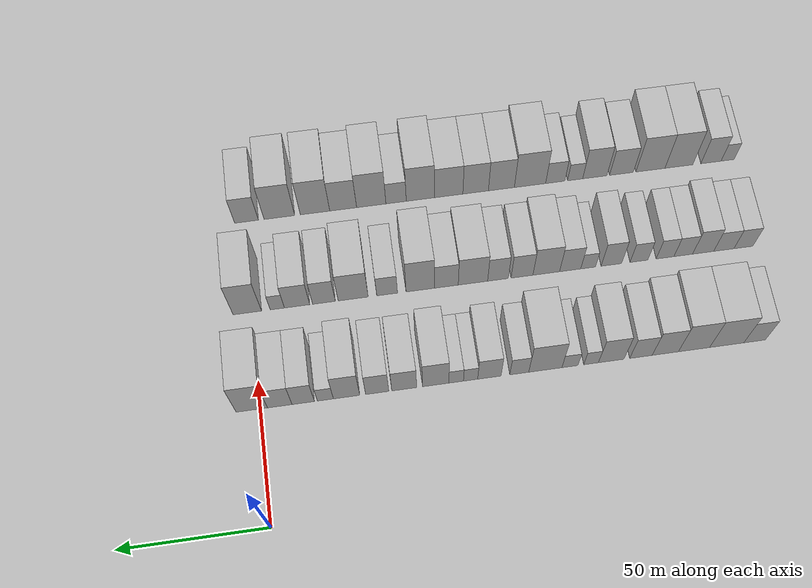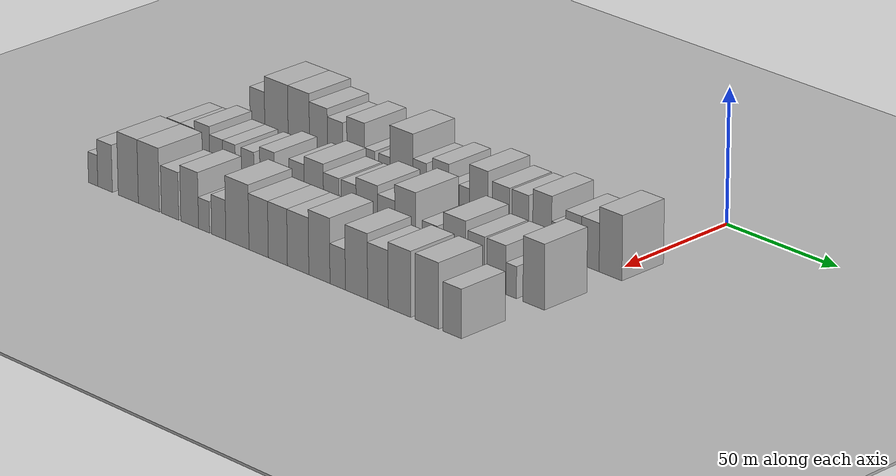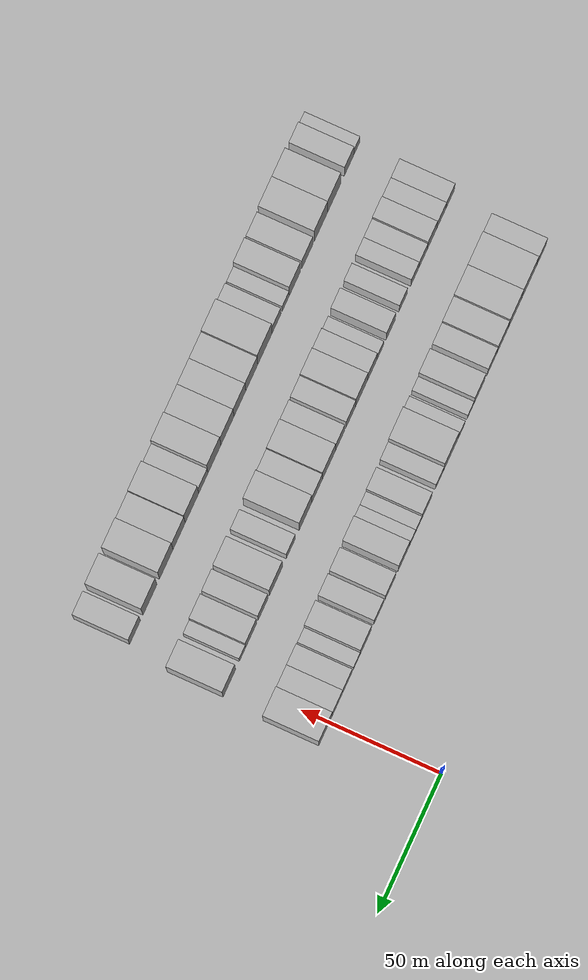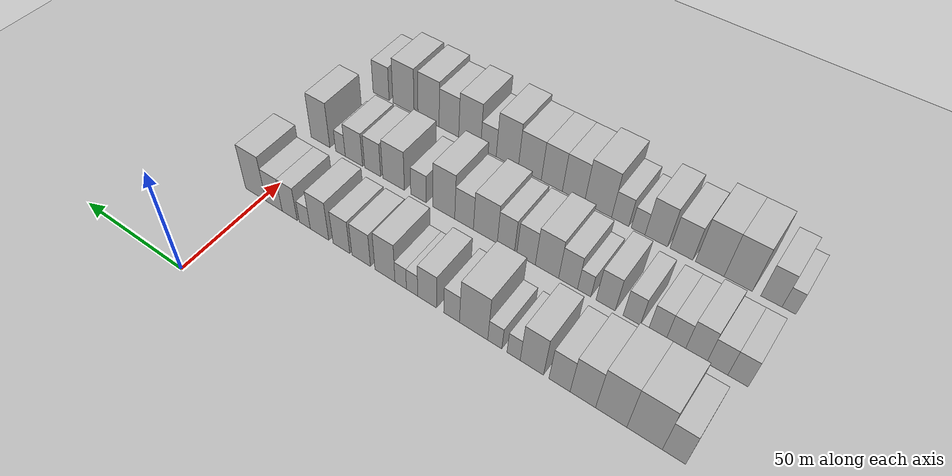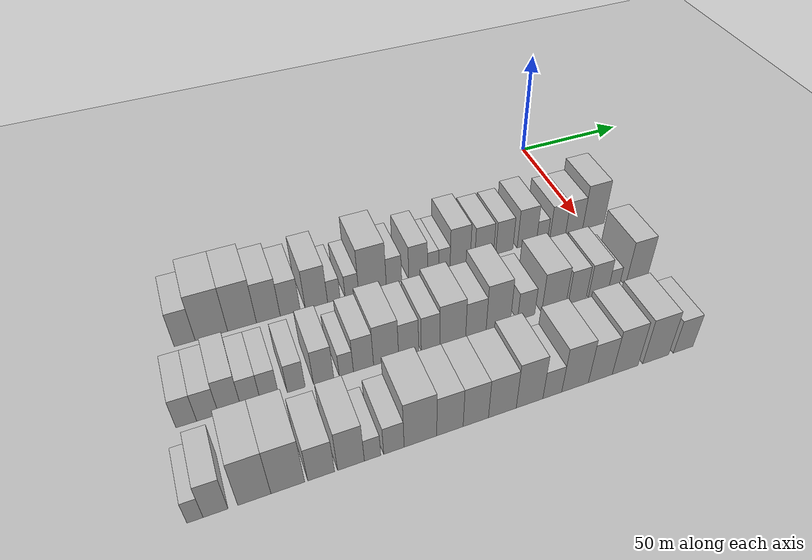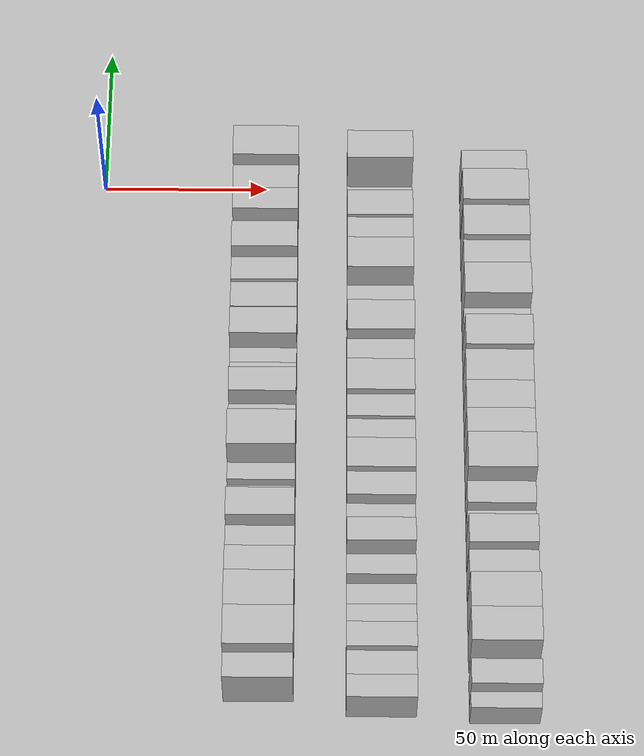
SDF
<sdf version="1.6">
 <world name="default">
  <include><name>ground_plane_1</name><uri>model://HANNAS_ground_plane</uri></include>
  <include>
   <name>ground_plane_2</name>
   <uri>model://HANNAS_ground_plane</uri>
   <pose>100 0 0  0 0 0</pose>
  </include>
  <model name="building_21">
   <static>1</static>
   <pose>50.0000 -168.9230 0 0.000000 0.000000 0.000000</pose>
   <link name="link">
    <pose>0 0 9.00 0 0 0</pose>
    <collision name="collision"><geometry><box><size>20.0000 7.5933 18.0000</size></box></geometry></collision>
    <visual name="visual">
     <cast_shadows>0</cast_shadows>
     <geometry><box><size>20.0000 7.5933 18.0000</size></box></geometry>
     <material>
      <script>
       <uri>model://HANNAS_wall/materials/scripts</uri>
       <uri>model://HANNAS_wall/materials/textures</uri>
       <name>vrc/HANNAS_wall</name>
      </script>
     </material>
    </visual>
   </link>
  </model>
  <model name="building_22">
   <static>1</static>
   <pose>50.0000 -159.1426 0 0.000000 0.000000 0.000000</pose>
   <link name="link">
    <pose>0 0 12.00 0 0 0</pose>
    <collision name="collision"><geometry><box><size>20.0000 11.9675 24.0000</size></box></geometry></collision>
    <visual name="visual">
     <cast_shadows>0</cast_shadows>
     <geometry><box><size>20.0000 11.9675 24.0000</size></box></geometry>
     <material>
      <script>
       <uri>model://HANNAS_wall/materials/scripts</uri>
       <uri>model://HANNAS_wall/materials/textures</uri>
       <name>vrc/HANNAS_wall</name>
      </script>
     </material>
    </visual>
   </link>
  </model>
  <model name="building_23">
   <static>1</static>
   <pose>50.0000 -147.7311 0 0.000000 0.000000 0.000000</pose>
   <link name="link">
    <pose>0 0 12.00 0 0 0</pose>
    <collision name="collision"><geometry><box><size>20.0000 10.8554 24.0000</size></box></geometry></collision>
    <visual name="visual">
     <cast_shadows>0</cast_shadows>
     <geometry><box><size>20.0000 10.8554 24.0000</size></box></geometry>
     <material>
      <script>
       <uri>model://HANNAS_wall/materials/scripts</uri>
       <uri>model://HANNAS_wall/materials/textures</uri>
       <name>vrc/HANNAS_wall</name>
      </script>
     </material>
    </visual>
   </link>
  </model>
  <model name="building_24">
   <static>1</static>
   <pose>50.0000 -137.7497 0 0.000000 0.000000 0.000000</pose>
   <link name="link">
    <pose>0 0 10.50 0 0 0</pose>
    <collision name="collision"><geometry><box><size>20.0000 9.1074 21.0000</size></box></geometry></collision>
    <visual name="visual">
     <cast_shadows>0</cast_shadows>
     <geometry><box><size>20.0000 9.1074 21.0000</size></box></geometry>
     <material>
      <script>
       <uri>model://HANNAS_wall/materials/scripts</uri>
       <uri>model://HANNAS_wall/materials/textures</uri>
       <name>vrc/HANNAS_wall</name>
      </script>
     </material>
    </visual>
   </link>
  </model>
  <model name="building_25">
   <static>1</static>
   <pose>50.0000 -129.3136 0 0.000000 0.000000 0.000000</pose>
   <link name="link">
    <pose>0 0 9.00 0 0 0</pose>
    <collision name="collision"><geometry><box><size>20.0000 7.7648 18.0000</size></box></geometry></collision>
    <visual name="visual">
     <cast_shadows>0</cast_shadows>
     <geometry><box><size>20.0000 7.7648 18.0000</size></box></geometry>
     <material>
      <script>
       <uri>model://HANNAS_wall/materials/scripts</uri>
       <uri>model://HANNAS_wall/materials/textures</uri>
       <name>vrc/HANNAS_wall</name>
      </script>
     </material>
    </visual>
   </link>
  </model>
  <model name="building_26">
   <static>1</static>
   <pose>50.0000 -119.0147 0 0.000000 0.000000 0.000000</pose>
   <link name="link">
    <pose>0 0 10.50 0 0 0</pose>
    <collision name="collision"><geometry><box><size>20.0000 8.8330 21.0000</size></box></geometry></collision>
    <visual name="visual">
     <cast_shadows>0</cast_shadows>
     <geometry><box><size>20.0000 8.8330 21.0000</size></box></geometry>
     <material>
      <script>
       <uri>model://HANNAS_wall/materials/scripts</uri>
       <uri>model://HANNAS_wall/materials/textures</uri>
       <name>vrc/HANNAS_wall</name>
      </script>
     </material>
    </visual>
   </link>
  </model>
  <model name="building_27">
   <static>1</static>
   <pose>50.0000 -112.0766 0 0.000000 0.000000 0.000000</pose>
   <link name="link">
    <pose>0 0 6.00 0 0 0</pose>
    <collision name="collision"><geometry><box><size>20.0000 5.0432 12.0000</size></box></geometry></collision>
    <visual name="visual">
     <cast_shadows>0</cast_shadows>
     <geometry><box><size>20.0000 5.0432 12.0000</size></box></geometry>
     <material>
      <script>
       <uri>model://HANNAS_wall/materials/scripts</uri>
       <uri>model://HANNAS_wall/materials/textures</uri>
       <name>vrc/HANNAS_wall</name>
      </script>
     </material>
    </visual>
   </link>
  </model>
  <model name="building_28">
   <static>1</static>
   <pose>50.0000 -104.7980 0 0.000000 0.000000 0.000000</pose>
   <link name="link">
    <pose>0 0 6.00 0 0 0</pose>
    <collision name="collision"><geometry><box><size>20.0000 5.5138 12.0000</size></box></geometry></collision>
    <visual name="visual">
     <cast_shadows>0</cast_shadows>
     <geometry><box><size>20.0000 5.5138 12.0000</size></box></geometry>
     <material>
      <script>
       <uri>model://HANNAS_wall/materials/scripts</uri>
       <uri>model://HANNAS_wall/materials/textures</uri>
       <name>vrc/HANNAS_wall</name>
      </script>
     </material>
    </visual>
   </link>
  </model>
  <model name="building_29">
   <static>1</static>
   <pose>50.0000 -96.3448 0 0.000000 0.000000 0.000000</pose>
   <link name="link">
    <pose>0 0 12.00 0 0 0</pose>
    <collision name="collision"><geometry><box><size>20.0000 11.3927 24.0000</size></box></geometry></collision>
    <visual name="visual">
     <cast_shadows>0</cast_shadows>
     <geometry><box><size>20.0000 11.3927 24.0000</size></box></geometry>
     <material>
      <script>
       <uri>model://HANNAS_wall/materials/scripts</uri>
       <uri>model://HANNAS_wall/materials/textures</uri>
       <name>vrc/HANNAS_wall</name>
      </script>
     </material>
    </visual>
   </link>
  </model>
  <model name="building_30">
   <static>1</static>
   <pose>50.0000 -87.4244 0 0.000000 0.000000 0.000000</pose>
   <link name="link">
    <pose>0 0 7.50 0 0 0</pose>
    <collision name="collision"><geometry><box><size>20.0000 6.4481 15.0000</size></box></geometry></collision>
    <visual name="visual">
     <cast_shadows>0</cast_shadows>
     <geometry><box><size>20.0000 6.4481 15.0000</size></box></geometry>
     <material>
      <script>
       <uri>model://HANNAS_wall/materials/scripts</uri>
       <uri>model://HANNAS_wall/materials/textures</uri>
       <name>vrc/HANNAS_wall</name>
      </script>
     </material>
    </visual>
   </link>
  </model>
  <model name="building_31">
   <static>1</static>
   <pose>50.0000 -77.2165 0 0.000000 0.000000 0.000000</pose>
   <link name="link">
    <pose>0 0 9.00 0 0 0</pose>
    <collision name="collision"><geometry><box><size>20.0000 7.9678 18.0000</size></box></geometry></collision>
    <visual name="visual">
     <cast_shadows>0</cast_shadows>
     <geometry><box><size>20.0000 7.9678 18.0000</size></box></geometry>
     <material>
      <script>
       <uri>model://HANNAS_wall/materials/scripts</uri>
       <uri>model://HANNAS_wall/materials/textures</uri>
       <name>vrc/HANNAS_wall</name>
      </script>
     </material>
    </visual>
   </link>
  </model>
  <model name="building_32">
   <static>1</static>
   <pose>50.0000 -70.8102 0 0.000000 0.000000 0.000000</pose>
   <link name="link">
    <pose>0 0 6.00 0 0 0</pose>
    <collision name="collision"><geometry><box><size>20.0000 4.8449 12.0000</size></box></geometry></collision>
    <visual name="visual">
     <cast_shadows>0</cast_shadows>
     <geometry><box><size>20.0000 4.8449 12.0000</size></box></geometry>
     <material>
      <script>
       <uri>model://HANNAS_wall/materials/scripts</uri>
       <uri>model://HANNAS_wall/materials/textures</uri>
       <name>vrc/HANNAS_wall</name>
      </script>
     </material>
    </visual>
   </link>
  </model>
  <model name="building_33">
   <static>1</static>
   <pose>50.0000 -65.8977 0 0.000000 0.000000 0.000000</pose>
   <link name="link">
    <pose>0 0 6.00 0 0 0</pose>
    <collision name="collision"><geometry><box><size>20.0000 4.9800 12.0000</size></box></geometry></collision>
    <visual name="visual">
     <cast_shadows>0</cast_shadows>
     <geometry><box><size>20.0000 4.9800 12.0000</size></box></geometry>
     <material>
      <script>
       <uri>model://HANNAS_wall/materials/scripts</uri>
       <uri>model://HANNAS_wall/materials/textures</uri>
       <name>vrc/HANNAS_wall</name>
      </script>
     </material>
    </visual>
   </link>
  </model>
  <model name="building_34">
   <static>1</static>
   <pose>50.0000 -58.9646 0 0.000000 0.000000 0.000000</pose>
   <link name="link">
    <pose>0 0 10.50 0 0 0</pose>
    <collision name="collision"><geometry><box><size>20.0000 8.8863 21.0000</size></box></geometry></collision>
    <visual name="visual">
     <cast_shadows>0</cast_shadows>
     <geometry><box><size>20.0000 8.8863 21.0000</size></box></geometry>
     <material>
      <script>
       <uri>model://HANNAS_wall/materials/scripts</uri>
       <uri>model://HANNAS_wall/materials/textures</uri>
       <name>vrc/HANNAS_wall</name>
      </script>
     </material>
    </visual>
   </link>
  </model>
  <model name="building_35">
   <static>1</static>
   <pose>50.0000 -48.3044 0 0.000000 0.000000 0.000000</pose>
   <link name="link">
    <pose>0 0 9.00 0 0 0</pose>
    <collision name="collision"><geometry><box><size>20.0000 8.4340 18.0000</size></box></geometry></collision>
    <visual name="visual">
     <cast_shadows>0</cast_shadows>
     <geometry><box><size>20.0000 8.4340 18.0000</size></box></geometry>
     <material>
      <script>
       <uri>model://HANNAS_wall/materials/scripts</uri>
       <uri>model://HANNAS_wall/materials/textures</uri>
       <name>vrc/HANNAS_wall</name>
      </script>
     </material>
    </visual>
   </link>
  </model>
  <model name="building_36">
   <static>1</static>
   <pose>50.0000 -39.1806 0 0.000000 0.000000 0.000000</pose>
   <link name="link">
    <pose>0 0 9.00 0 0 0</pose>
    <collision name="collision"><geometry><box><size>20.0000 7.8136 18.0000</size></box></geometry></collision>
    <visual name="visual">
     <cast_shadows>0</cast_shadows>
     <geometry><box><size>20.0000 7.8136 18.0000</size></box></geometry>
     <material>
      <script>
       <uri>model://HANNAS_wall/materials/scripts</uri>
       <uri>model://HANNAS_wall/materials/textures</uri>
       <name>vrc/HANNAS_wall</name>
      </script>
     </material>
    </visual>
   </link>
  </model>
  <model name="building_37">
   <static>1</static>
   <pose>50.0000 -28.8370 0 0.000000 0.000000 0.000000</pose>
   <link name="link">
    <pose>0 0 10.50 0 0 0</pose>
    <collision name="collision"><geometry><box><size>20.0000 8.8737 21.0000</size></box></geometry></collision>
    <visual name="visual">
     <cast_shadows>0</cast_shadows>
     <geometry><box><size>20.0000 8.8737 21.0000</size></box></geometry>
     <material>
      <script>
       <uri>model://HANNAS_wall/materials/scripts</uri>
       <uri>model://HANNAS_wall/materials/textures</uri>
       <name>vrc/HANNAS_wall</name>
      </script>
     </material>
    </visual>
   </link>
  </model>
  <model name="building_38">
   <static>1</static>
   <pose>50.0000 -21.7184 0 0.000000 0.000000 0.000000</pose>
   <link name="link">
    <pose>0 0 6.00 0 0 0</pose>
    <collision name="collision"><geometry><box><size>20.0000 5.3636 12.0000</size></box></geometry></collision>
    <visual name="visual">
     <cast_shadows>0</cast_shadows>
     <geometry><box><size>20.0000 5.3636 12.0000</size></box></geometry>
     <material>
      <script>
       <uri>model://HANNAS_wall/materials/scripts</uri>
       <uri>model://HANNAS_wall/materials/textures</uri>
       <name>vrc/HANNAS_wall</name>
      </script>
     </material>
    </visual>
   </link>
  </model>
  <model name="building_39">
   <static>1</static>
   <pose>50.0000 -14.2941 0 0.000000 0.000000 0.000000</pose>
   <link name="link">
    <pose>0 0 9.00 0 0 0</pose>
    <collision name="collision"><geometry><box><size>20.0000 7.4851 18.0000</size></box></geometry></collision>
    <visual name="visual">
     <cast_shadows>0</cast_shadows>
     <geometry><box><size>20.0000 7.4851 18.0000</size></box></geometry>
     <material>
      <script>
       <uri>model://HANNAS_wall/materials/scripts</uri>
       <uri>model://HANNAS_wall/materials/textures</uri>
       <name>vrc/HANNAS_wall</name>
      </script>
     </material>
    </visual>
   </link>
  </model>
  <model name="building_40">
   <static>1</static>
   <pose>50.0000 -6.4519 0 0.000000 0.000000 0.000000</pose>
   <link name="link">
    <pose>0 0 9.00 0 0 0</pose>
    <collision name="collision"><geometry><box><size>20.0000 8.1993 18.0000</size></box></geometry></collision>
    <visual name="visual">
     <cast_shadows>0</cast_shadows>
     <geometry><box><size>20.0000 8.1993 18.0000</size></box></geometry>
     <material>
      <script>
       <uri>model://HANNAS_wall/materials/scripts</uri>
       <uri>model://HANNAS_wall/materials/textures</uri>
       <name>vrc/HANNAS_wall</name>
      </script>
     </material>
    </visual>
   </link>
  </model>
  <model name="building_41">
   <static>1</static>
   <pose>50.0000 2.8900 0 0.000000 0.000000 0.000000</pose>
   <link name="link">
    <pose>0 0 12.00 0 0 0</pose>
    <collision name="collision"><geometry><box><size>20.0000 10.4844 24.0000</size></box></geometry></collision>
    <visual name="visual">
     <cast_shadows>0</cast_shadows>
     <geometry><box><size>20.0000 10.4844 24.0000</size></box></geometry>
     <material>
      <script>
       <uri>model://HANNAS_wall/materials/scripts</uri>
       <uri>model://HANNAS_wall/materials/textures</uri>
       <name>vrc/HANNAS_wall</name>
      </script>
     </material>
    </visual>
   </link>
  </model>
  <model name="building_107">
   <static>1</static>
   <pose>85.0000 -173.7411 0 0.000000 0.000000 0.000000</pose>
   <link name="link">
    <pose>0 0 7.50 0 0 0</pose>
    <collision name="collision"><geometry><box><size>20.0000 6.8710 15.0000</size></box></geometry></collision>
    <visual name="visual">
     <cast_shadows>0</cast_shadows>
     <geometry><box><size>20.0000 6.8710 15.0000</size></box></geometry>
     <material>
      <script>
       <uri>model://HANNAS_wall/materials/scripts</uri>
       <uri>model://HANNAS_wall/materials/textures</uri>
       <name>vrc/HANNAS_wall</name>
      </script>
     </material>
    </visual>
   </link>
  </model>
  <model name="building_108">
   <static>1</static>
   <pose>85.0000 -166.6475 0 0.000000 0.000000 0.000000</pose>
   <link name="link">
    <pose>0 0 7.50 0 0 0</pose>
    <collision name="collision"><geometry><box><size>20.0000 7.3164 15.0000</size></box></geometry></collision>
    <visual name="visual">
     <cast_shadows>0</cast_shadows>
     <geometry><box><size>20.0000 7.3164 15.0000</size></box></geometry>
     <material>
      <script>
       <uri>model://HANNAS_wall/materials/scripts</uri>
       <uri>model://HANNAS_wall/materials/textures</uri>
       <name>vrc/HANNAS_wall</name>
      </script>
     </material>
    </visual>
   </link>
  </model>
  <model name="building_109">
   <static>1</static>
   <pose>85.0000 -159.1864 0 0.000000 0.000000 0.000000</pose>
   <link name="link">
    <pose>0 0 9.00 0 0 0</pose>
    <collision name="collision"><geometry><box><size>20.0000 7.6057 18.0000</size></box></geometry></collision>
    <visual name="visual">
     <cast_shadows>0</cast_shadows>
     <geometry><box><size>20.0000 7.6057 18.0000</size></box></geometry>
     <material>
      <script>
       <uri>model://HANNAS_wall/materials/scripts</uri>
       <uri>model://HANNAS_wall/materials/textures</uri>
       <name>vrc/HANNAS_wall</name>
      </script>
     </material>
    </visual>
   </link>
  </model>
  <model name="building_110">
   <static>1</static>
   <pose>85.0000 -152.0241 0 0.000000 0.000000 0.000000</pose>
   <link name="link">
    <pose>0 0 7.50 0 0 0</pose>
    <collision name="collision"><geometry><box><size>20.0000 6.7189 15.0000</size></box></geometry></collision>
    <visual name="visual">
     <cast_shadows>0</cast_shadows>
     <geometry><box><size>20.0000 6.7189 15.0000</size></box></geometry>
     <material>
      <script>
       <uri>model://HANNAS_wall/materials/scripts</uri>
       <uri>model://HANNAS_wall/materials/textures</uri>
       <name>vrc/HANNAS_wall</name>
      </script>
     </material>
    </visual>
   </link>
  </model>
  <model name="building_111">
   <static>1</static>
   <pose>85.0000 -145.4629 0 0.000000 0.000000 0.000000</pose>
   <link name="link">
    <pose>0 0 7.50 0 0 0</pose>
    <collision name="collision"><geometry><box><size>20.0000 6.4036 15.0000</size></box></geometry></collision>
    <visual name="visual">
     <cast_shadows>0</cast_shadows>
     <geometry><box><size>20.0000 6.4036 15.0000</size></box></geometry>
     <material>
      <script>
       <uri>model://HANNAS_wall/materials/scripts</uri>
       <uri>model://HANNAS_wall/materials/textures</uri>
       <name>vrc/HANNAS_wall</name>
      </script>
     </material>
    </visual>
   </link>
  </model>
  <model name="building_112">
   <static>1</static>
   <pose>85.0000 -136.0691 0 0.000000 0.000000 0.000000</pose>
   <link name="link">
    <pose>0 0 7.50 0 0 0</pose>
    <collision name="collision"><geometry><box><size>20.0000 6.3841 15.0000</size></box></geometry></collision>
    <visual name="visual">
     <cast_shadows>0</cast_shadows>
     <geometry><box><size>20.0000 6.3841 15.0000</size></box></geometry>
     <material>
      <script>
       <uri>model://HANNAS_wall/materials/scripts</uri>
       <uri>model://HANNAS_wall/materials/textures</uri>
       <name>vrc/HANNAS_wall</name>
      </script>
     </material>
    </visual>
   </link>
  </model>
  <model name="building_113">
   <static>1</static>
   <pose>85.0000 -126.2025 0 0.000000 0.000000 0.000000</pose>
   <link name="link">
    <pose>0 0 9.00 0 0 0</pose>
    <collision name="collision"><geometry><box><size>20.0000 7.3492 18.0000</size></box></geometry></collision>
    <visual name="visual">
     <cast_shadows>0</cast_shadows>
     <geometry><box><size>20.0000 7.3492 18.0000</size></box></geometry>
     <material>
      <script>
       <uri>model://HANNAS_wall/materials/scripts</uri>
       <uri>model://HANNAS_wall/materials/textures</uri>
       <name>vrc/HANNAS_wall</name>
      </script>
     </material>
    </visual>
   </link>
  </model>
  <model name="building_114">
   <static>1</static>
   <pose>85.0000 -117.9055 0 0.000000 0.000000 0.000000</pose>
   <link name="link">
    <pose>0 0 6.00 0 0 0</pose>
    <collision name="collision"><geometry><box><size>20.0000 5.2447 12.0000</size></box></geometry></collision>
    <visual name="visual">
     <cast_shadows>0</cast_shadows>
     <geometry><box><size>20.0000 5.2447 12.0000</size></box></geometry>
     <material>
      <script>
       <uri>model://HANNAS_wall/materials/scripts</uri>
       <uri>model://HANNAS_wall/materials/textures</uri>
       <name>vrc/HANNAS_wall</name>
      </script>
     </material>
    </visual>
   </link>
  </model>
  <model name="building_115">
   <static>1</static>
   <pose>85.0000 -111.5228 0 0.000000 0.000000 0.000000</pose>
   <link name="link">
    <pose>0 0 9.00 0 0 0</pose>
    <collision name="collision"><geometry><box><size>20.0000 7.5206 18.0000</size></box></geometry></collision>
    <visual name="visual">
     <cast_shadows>0</cast_shadows>
     <geometry><box><size>20.0000 7.5206 18.0000</size></box></geometry>
     <material>
      <script>
       <uri>model://HANNAS_wall/materials/scripts</uri>
       <uri>model://HANNAS_wall/materials/textures</uri>
       <name>vrc/HANNAS_wall</name>
      </script>
     </material>
    </visual>
   </link>
  </model>
  <model name="building_116">
   <static>1</static>
   <pose>85.0000 -103.0057 0 0.000000 0.000000 0.000000</pose>
   <link name="link">
    <pose>0 0 10.50 0 0 0</pose>
    <collision name="collision"><geometry><box><size>20.0000 9.5137 21.0000</size></box></geometry></collision>
    <visual name="visual">
     <cast_shadows>0</cast_shadows>
     <geometry><box><size>20.0000 9.5137 21.0000</size></box></geometry>
     <material>
      <script>
       <uri>model://HANNAS_wall/materials/scripts</uri>
       <uri>model://HANNAS_wall/materials/textures</uri>
       <name>vrc/HANNAS_wall</name>
      </script>
     </material>
    </visual>
   </link>
  </model>
  <model name="building_117">
   <static>1</static>
   <pose>85.0000 -94.3867 0 0.000000 0.000000 0.000000</pose>
   <link name="link">
    <pose>0 0 9.00 0 0 0</pose>
    <collision name="collision"><geometry><box><size>20.0000 7.7243 18.0000</size></box></geometry></collision>
    <visual name="visual">
     <cast_shadows>0</cast_shadows>
     <geometry><box><size>20.0000 7.7243 18.0000</size></box></geometry>
     <material>
      <script>
       <uri>model://HANNAS_wall/materials/scripts</uri>
       <uri>model://HANNAS_wall/materials/textures</uri>
       <name>vrc/HANNAS_wall</name>
      </script>
     </material>
    </visual>
   </link>
  </model>
  <model name="building_118">
   <static>1</static>
   <pose>85.0000 -85.8840 0 0.000000 0.000000 0.000000</pose>
   <link name="link">
    <pose>0 0 9.00 0 0 0</pose>
    <collision name="collision"><geometry><box><size>20.0000 7.2810 18.0000</size></box></geometry></collision>
    <visual name="visual">
     <cast_shadows>0</cast_shadows>
     <geometry><box><size>20.0000 7.2810 18.0000</size></box></geometry>
     <material>
      <script>
       <uri>model://HANNAS_wall/materials/scripts</uri>
       <uri>model://HANNAS_wall/materials/textures</uri>
       <name>vrc/HANNAS_wall</name>
      </script>
     </material>
    </visual>
   </link>
  </model>
  <model name="building_119">
   <static>1</static>
   <pose>85.0000 -77.0616 0 0.000000 0.000000 0.000000</pose>
   <link name="link">
    <pose>0 0 10.50 0 0 0</pose>
    <collision name="collision"><geometry><box><size>20.0000 10.3640 21.0000</size></box></geometry></collision>
    <visual name="visual">
     <cast_shadows>0</cast_shadows>
     <geometry><box><size>20.0000 10.3640 21.0000</size></box></geometry>
     <material>
      <script>
       <uri>model://HANNAS_wall/materials/scripts</uri>
       <uri>model://HANNAS_wall/materials/textures</uri>
       <name>vrc/HANNAS_wall</name>
      </script>
     </material>
    </visual>
   </link>
  </model>
  <model name="building_120">
   <static>1</static>
   <pose>85.0000 -67.7225 0 0.000000 0.000000 0.000000</pose>
   <link name="link">
    <pose>0 0 9.00 0 0 0</pose>
    <collision name="collision"><geometry><box><size>20.0000 8.3142 18.0000</size></box></geometry></collision>
    <visual name="visual">
     <cast_shadows>0</cast_shadows>
     <geometry><box><size>20.0000 8.3142 18.0000</size></box></geometry>
     <material>
      <script>
       <uri>model://HANNAS_wall/materials/scripts</uri>
       <uri>model://HANNAS_wall/materials/textures</uri>
       <name>vrc/HANNAS_wall</name>
      </script>
     </material>
    </visual>
   </link>
  </model>
  <model name="building_121">
   <static>1</static>
   <pose>85.0000 -58.5630 0 0.000000 0.000000 0.000000</pose>
   <link name="link">
    <pose>0 0 12.00 0 0 0</pose>
    <collision name="collision"><geometry><box><size>20.0000 10.0049 24.0000</size></box></geometry></collision>
    <visual name="visual">
     <cast_shadows>0</cast_shadows>
     <geometry><box><size>20.0000 10.0049 24.0000</size></box></geometry>
     <material>
      <script>
       <uri>model://HANNAS_wall/materials/scripts</uri>
       <uri>model://HANNAS_wall/materials/textures</uri>
       <name>vrc/HANNAS_wall</name>
      </script>
     </material>
    </visual>
   </link>
  </model>
  <model name="building_122">
   <static>1</static>
   <pose>85.0000 -46.9334 0 0.000000 0.000000 0.000000</pose>
   <link name="link">
    <pose>0 0 7.50 0 0 0</pose>
    <collision name="collision"><geometry><box><size>20.0000 7.2543 15.0000</size></box></geometry></collision>
    <visual name="visual">
     <cast_shadows>0</cast_shadows>
     <geometry><box><size>20.0000 7.2543 15.0000</size></box></geometry>
     <material>
      <script>
       <uri>model://HANNAS_wall/materials/scripts</uri>
       <uri>model://HANNAS_wall/materials/textures</uri>
       <name>vrc/HANNAS_wall</name>
      </script>
     </material>
    </visual>
   </link>
  </model>
  <model name="building_123">
   <static>1</static>
   <pose>85.0000 -35.0860 0 0.000000 0.000000 0.000000</pose>
   <link name="link">
    <pose>0 0 10.50 0 0 0</pose>
    <collision name="collision"><geometry><box><size>20.0000 10.4404 21.0000</size></box></geometry></collision>
    <visual name="visual">
     <cast_shadows>0</cast_shadows>
     <geometry><box><size>20.0000 10.4404 21.0000</size></box></geometry>
     <material>
      <script>
       <uri>model://HANNAS_wall/materials/scripts</uri>
       <uri>model://HANNAS_wall/materials/textures</uri>
       <name>vrc/HANNAS_wall</name>
      </script>
     </material>
    </visual>
   </link>
  </model>
  <model name="building_124">
   <static>1</static>
   <pose>85.0000 -24.9152 0 0.000000 0.000000 0.000000</pose>
   <link name="link">
    <pose>0 0 9.00 0 0 0</pose>
    <collision name="collision"><geometry><box><size>20.0000 7.9013 18.0000</size></box></geometry></collision>
    <visual name="visual">
     <cast_shadows>0</cast_shadows>
     <geometry><box><size>20.0000 7.9013 18.0000</size></box></geometry>
     <material>
      <script>
       <uri>model://HANNAS_wall/materials/scripts</uri>
       <uri>model://HANNAS_wall/materials/textures</uri>
       <name>vrc/HANNAS_wall</name>
      </script>
     </material>
    </visual>
   </link>
  </model>
  <model name="building_125">
   <static>1</static>
   <pose>85.0000 -15.5747 0 0.000000 0.000000 0.000000</pose>
   <link name="link">
    <pose>0 0 9.00 0 0 0</pose>
    <collision name="collision"><geometry><box><size>20.0000 8.7797 18.0000</size></box></geometry></collision>
    <visual name="visual">
     <cast_shadows>0</cast_shadows>
     <geometry><box><size>20.0000 8.7797 18.0000</size></box></geometry>
     <material>
      <script>
       <uri>model://HANNAS_wall/materials/scripts</uri>
       <uri>model://HANNAS_wall/materials/textures</uri>
       <name>vrc/HANNAS_wall</name>
      </script>
     </material>
    </visual>
   </link>
  </model>
  <model name="building_126">
   <static>1</static>
   <pose>85.0000 -8.7260 0 0.000000 0.000000 0.000000</pose>
   <link name="link">
    <pose>0 0 6.00 0 0 0</pose>
    <collision name="collision"><geometry><box><size>20.0000 4.9177 12.0000</size></box></geometry></collision>
    <visual name="visual">
     <cast_shadows>0</cast_shadows>
     <geometry><box><size>20.0000 4.9177 12.0000</size></box></geometry>
     <material>
      <script>
       <uri>model://HANNAS_wall/materials/scripts</uri>
       <uri>model://HANNAS_wall/materials/textures</uri>
       <name>vrc/HANNAS_wall</name>
      </script>
     </material>
    </visual>
   </link>
  </model>
  <model name="building_127">
   <static>1</static>
   <pose>85.0000 1.6451 0 0.000000 0.000000 0.000000</pose>
   <link name="link">
    <pose>0 0 12.00 0 0 0</pose>
    <collision name="collision"><geometry><box><size>20.0000 9.8245 24.0000</size></box></geometry></collision>
    <visual name="visual">
     <cast_shadows>0</cast_shadows>
     <geometry><box><size>20.0000 9.8245 24.0000</size></box></geometry>
     <material>
      <script>
       <uri>model://HANNAS_wall/materials/scripts</uri>
       <uri>model://HANNAS_wall/materials/textures</uri>
       <name>vrc/HANNAS_wall</name>
      </script>
     </material>
    </visual>
   </link>
  </model>
  <model name="building_187">
   <static>1</static>
   <pose>120.0000 -176.5685 0 0.000000 0.000000 0.000000</pose>
   <link name="link">
    <pose>0 0 6.00 0 0 0</pose>
    <collision name="collision"><geometry><box><size>20.0000 4.8443 12.0000</size></box></geometry></collision>
    <visual name="visual">
     <cast_shadows>0</cast_shadows>
     <geometry><box><size>20.0000 4.8443 12.0000</size></box></geometry>
     <material>
      <script>
       <uri>model://HANNAS_wall/materials/scripts</uri>
       <uri>model://HANNAS_wall/materials/textures</uri>
       <name>vrc/HANNAS_wall</name>
      </script>
     </material>
    </visual>
   </link>
  </model>
  <model name="building_188">
   <static>1</static>
   <pose>120.0000 -170.3663 0 0.000000 0.000000 0.000000</pose>
   <link name="link">
    <pose>0 0 9.00 0 0 0</pose>
    <collision name="collision"><geometry><box><size>20.0000 7.5600 18.0000</size></box></geometry></collision>
    <visual name="visual">
     <cast_shadows>0</cast_shadows>
     <geometry><box><size>20.0000 7.5600 18.0000</size></box></geometry>
     <material>
      <script>
       <uri>model://HANNAS_wall/materials/scripts</uri>
       <uri>model://HANNAS_wall/materials/textures</uri>
       <name>vrc/HANNAS_wall</name>
      </script>
     </material>
    </visual>
   </link>
  </model>
  <model name="building_189">
   <static>1</static>
   <pose>120.0000 -158.4052 0 0.000000 0.000000 0.000000</pose>
   <link name="link">
    <pose>0 0 12.00 0 0 0</pose>
    <collision name="collision"><geometry><box><size>20.0000 10.3622 24.0000</size></box></geometry></collision>
    <visual name="visual">
     <cast_shadows>0</cast_shadows>
     <geometry><box><size>20.0000 10.3622 24.0000</size></box></geometry>
     <material>
      <script>
       <uri>model://HANNAS_wall/materials/scripts</uri>
       <uri>model://HANNAS_wall/materials/textures</uri>
       <name>vrc/HANNAS_wall</name>
      </script>
     </material>
    </visual>
   </link>
  </model>
  <model name="building_190">
   <static>1</static>
   <pose>120.0000 -147.8341 0 0.000000 0.000000 0.000000</pose>
   <link name="link">
    <pose>0 0 12.00 0 0 0</pose>
    <collision name="collision"><geometry><box><size>20.0000 10.7800 24.0000</size></box></geometry></collision>
    <visual name="visual">
     <cast_shadows>0</cast_shadows>
     <geometry><box><size>20.0000 10.7800 24.0000</size></box></geometry>
     <material>
      <script>
       <uri>model://HANNAS_wall/materials/scripts</uri>
       <uri>model://HANNAS_wall/materials/textures</uri>
       <name>vrc/HANNAS_wall</name>
      </script>
     </material>
    </visual>
   </link>
  </model>
  <model name="building_191">
   <static>1</static>
   <pose>120.0000 -137.0564 0 0.000000 0.000000 0.000000</pose>
   <link name="link">
    <pose>0 0 9.00 0 0 0</pose>
    <collision name="collision"><geometry><box><size>20.0000 8.7754 18.0000</size></box></geometry></collision>
    <visual name="visual">
     <cast_shadows>0</cast_shadows>
     <geometry><box><size>20.0000 8.7754 18.0000</size></box></geometry>
     <material>
      <script>
       <uri>model://HANNAS_wall/materials/scripts</uri>
       <uri>model://HANNAS_wall/materials/textures</uri>
       <name>vrc/HANNAS_wall</name>
      </script>
     </material>
    </visual>
   </link>
  </model>
  <model name="building_192">
   <static>1</static>
   <pose>120.0000 -127.1987 0 0.000000 0.000000 0.000000</pose>
   <link name="link">
    <pose>0 0 10.50 0 0 0</pose>
    <collision name="collision"><geometry><box><size>20.0000 8.9399 21.0000</size></box></geometry></collision>
    <visual name="visual">
     <cast_shadows>0</cast_shadows>
     <geometry><box><size>20.0000 8.9399 21.0000</size></box></geometry>
     <material>
      <script>
       <uri>model://HANNAS_wall/materials/scripts</uri>
       <uri>model://HANNAS_wall/materials/textures</uri>
       <name>vrc/HANNAS_wall</name>
      </script>
     </material>
    </visual>
   </link>
  </model>
  <model name="building_193">
   <static>1</static>
   <pose>120.0000 -119.9520 0 0.000000 0.000000 0.000000</pose>
   <link name="link">
    <pose>0 0 6.00 0 0 0</pose>
    <collision name="collision"><geometry><box><size>20.0000 5.5534 12.0000</size></box></geometry></collision>
    <visual name="visual">
     <cast_shadows>0</cast_shadows>
     <geometry><box><size>20.0000 5.5534 12.0000</size></box></geometry>
     <material>
      <script>
       <uri>model://HANNAS_wall/materials/scripts</uri>
       <uri>model://HANNAS_wall/materials/textures</uri>
       <name>vrc/HANNAS_wall</name>
      </script>
     </material>
    </visual>
   </link>
  </model>
  <model name="building_194">
   <static>1</static>
   <pose>120.0000 -112.6445 0 0.000000 0.000000 0.000000</pose>
   <link name="link">
    <pose>0 0 7.50 0 0 0</pose>
    <collision name="collision"><geometry><box><size>20.0000 7.0617 15.0000</size></box></geometry></collision>
    <visual name="visual">
     <cast_shadows>0</cast_shadows>
     <geometry><box><size>20.0000 7.0617 15.0000</size></box></geometry>
     <material>
      <script>
       <uri>model://HANNAS_wall/materials/scripts</uri>
       <uri>model://HANNAS_wall/materials/textures</uri>
       <name>vrc/HANNAS_wall</name>
      </script>
     </material>
    </visual>
   </link>
  </model>
  <model name="building_195">
   <static>1</static>
   <pose>120.0000 -103.3822 0 0.000000 0.000000 0.000000</pose>
   <link name="link">
    <pose>0 0 12.00 0 0 0</pose>
    <collision name="collision"><geometry><box><size>20.0000 11.4629 24.0000</size></box></geometry></collision>
    <visual name="visual">
     <cast_shadows>0</cast_shadows>
     <geometry><box><size>20.0000 11.4629 24.0000</size></box></geometry>
     <material>
      <script>
       <uri>model://HANNAS_wall/materials/scripts</uri>
       <uri>model://HANNAS_wall/materials/textures</uri>
       <name>vrc/HANNAS_wall</name>
      </script>
     </material>
    </visual>
   </link>
  </model>
  <model name="building_196">
   <static>1</static>
   <pose>120.0000 -92.9010 0 0.000000 0.000000 0.000000</pose>
   <link name="link">
    <pose>0 0 10.50 0 0 0</pose>
    <collision name="collision"><geometry><box><size>20.0000 9.4996 21.0000</size></box></geometry></collision>
    <visual name="visual">
     <cast_shadows>0</cast_shadows>
     <geometry><box><size>20.0000 9.4996 21.0000</size></box></geometry>
     <material>
      <script>
       <uri>model://HANNAS_wall/materials/scripts</uri>
       <uri>model://HANNAS_wall/materials/textures</uri>
       <name>vrc/HANNAS_wall</name>
      </script>
     </material>
    </visual>
   </link>
  </model>
  <model name="building_197">
   <static>1</static>
   <pose>120.0000 -83.5003 0 0.000000 0.000000 0.000000</pose>
   <link name="link">
    <pose>0 0 10.50 0 0 0</pose>
    <collision name="collision"><geometry><box><size>20.0000 9.3018 21.0000</size></box></geometry></collision>
    <visual name="visual">
     <cast_shadows>0</cast_shadows>
     <geometry><box><size>20.0000 9.3018 21.0000</size></box></geometry>
     <material>
      <script>
       <uri>model://HANNAS_wall/materials/scripts</uri>
       <uri>model://HANNAS_wall/materials/textures</uri>
       <name>vrc/HANNAS_wall</name>
      </script>
     </material>
    </visual>
   </link>
  </model>
  <model name="building_198">
   <static>1</static>
   <pose>120.0000 -73.6577 0 0.000000 0.000000 0.000000</pose>
   <link name="link">
    <pose>0 0 10.50 0 0 0</pose>
    <collision name="collision"><geometry><box><size>20.0000 10.3835 21.0000</size></box></geometry></collision>
    <visual name="visual">
     <cast_shadows>0</cast_shadows>
     <geometry><box><size>20.0000 10.3835 21.0000</size></box></geometry>
     <material>
      <script>
       <uri>model://HANNAS_wall/materials/scripts</uri>
       <uri>model://HANNAS_wall/materials/textures</uri>
       <name>vrc/HANNAS_wall</name>
      </script>
     </material>
    </visual>
   </link>
  </model>
  <model name="building_199">
   <static>1</static>
   <pose>120.0000 -63.3701 0 0.000000 0.000000 0.000000</pose>
   <link name="link">
    <pose>0 0 12.00 0 0 0</pose>
    <collision name="collision"><geometry><box><size>20.0000 10.1918 24.0000</size></box></geometry></collision>
    <visual name="visual">
     <cast_shadows>0</cast_shadows>
     <geometry><box><size>20.0000 10.1918 24.0000</size></box></geometry>
     <material>
      <script>
       <uri>model://HANNAS_wall/materials/scripts</uri>
       <uri>model://HANNAS_wall/materials/textures</uri>
       <name>vrc/HANNAS_wall</name>
      </script>
     </material>
    </visual>
   </link>
  </model>
  <model name="building_200">
   <static>1</static>
   <pose>120.0000 -54.5985 0 0.000000 0.000000 0.000000</pose>
   <link name="link">
    <pose>0 0 7.50 0 0 0</pose>
    <collision name="collision"><geometry><box><size>20.0000 7.3514 15.0000</size></box></geometry></collision>
    <visual name="visual">
     <cast_shadows>0</cast_shadows>
     <geometry><box><size>20.0000 7.3514 15.0000</size></box></geometry>
     <material>
      <script>
       <uri>model://HANNAS_wall/materials/scripts</uri>
       <uri>model://HANNAS_wall/materials/textures</uri>
       <name>vrc/HANNAS_wall</name>
      </script>
     </material>
    </visual>
   </link>
  </model>
  <model name="building_201">
   <static>1</static>
   <pose>120.0000 -45.6325 0 0.000000 0.000000 0.000000</pose>
   <link name="link">
    <pose>0 0 12.00 0 0 0</pose>
    <collision name="collision"><geometry><box><size>20.0000 10.5806 24.0000</size></box></geometry></collision>
    <visual name="visual">
     <cast_shadows>0</cast_shadows>
     <geometry><box><size>20.0000 10.5806 24.0000</size></box></geometry>
     <material>
      <script>
       <uri>model://HANNAS_wall/materials/scripts</uri>
       <uri>model://HANNAS_wall/materials/textures</uri>
       <name>vrc/HANNAS_wall</name>
      </script>
     </material>
    </visual>
   </link>
  </model>
  <model name="building_202">
   <static>1</static>
   <pose>120.0000 -35.5060 0 0.000000 0.000000 0.000000</pose>
   <link name="link">
    <pose>0 0 10.50 0 0 0</pose>
    <collision name="collision"><geometry><box><size>20.0000 9.6723 21.0000</size></box></geometry></collision>
    <visual name="visual">
     <cast_shadows>0</cast_shadows>
     <geometry><box><size>20.0000 9.6723 21.0000</size></box></geometry>
     <material>
      <script>
       <uri>model://HANNAS_wall/materials/scripts</uri>
       <uri>model://HANNAS_wall/materials/textures</uri>
       <name>vrc/HANNAS_wall</name>
      </script>
     </material>
    </visual>
   </link>
  </model>
  <model name="building_203">
   <static>1</static>
   <pose>120.0000 -25.3675 0 0.000000 0.000000 0.000000</pose>
   <link name="link">
    <pose>0 0 12.00 0 0 0</pose>
    <collision name="collision"><geometry><box><size>20.0000 10.6047 24.0000</size></box></geometry></collision>
    <visual name="visual">
     <cast_shadows>0</cast_shadows>
     <geometry><box><size>20.0000 10.6047 24.0000</size></box></geometry>
     <material>
      <script>
       <uri>model://HANNAS_wall/materials/scripts</uri>
       <uri>model://HANNAS_wall/materials/textures</uri>
       <name>vrc/HANNAS_wall</name>
      </script>
     </material>
    </visual>
   </link>
  </model>
  <model name="building_204">
   <static>1</static>
   <pose>120.0000 -12.5828 0 0.000000 0.000000 0.000000</pose>
   <link name="link">
    <pose>0 0 12.00 0 0 0</pose>
    <collision name="collision"><geometry><box><size>20.0000 10.9646 24.0000</size></box></geometry></collision>
    <visual name="visual">
     <cast_shadows>0</cast_shadows>
     <geometry><box><size>20.0000 10.9646 24.0000</size></box></geometry>
     <material>
      <script>
       <uri>model://HANNAS_wall/materials/scripts</uri>
       <uri>model://HANNAS_wall/materials/textures</uri>
       <name>vrc/HANNAS_wall</name>
      </script>
     </material>
    </visual>
   </link>
  </model>
  <model name="building_205">
   <static>1</static>
   <pose>120.0000 -0.8513 0 0.000000 0.000000 0.000000</pose>
   <link name="link">
    <pose>0 0 9.00 0 0 0</pose>
    <collision name="collision"><geometry><box><size>20.0000 8.4985 18.0000</size></box></geometry></collision>
    <visual name="visual">
     <cast_shadows>0</cast_shadows>
     <geometry><box><size>20.0000 8.4985 18.0000</size></box></geometry>
     <material>
      <script>
       <uri>model://HANNAS_wall/materials/scripts</uri>
       <uri>model://HANNAS_wall/materials/textures</uri>
       <name>vrc/HANNAS_wall</name>
      </script>
     </material>
    </visual>
   </link>
  </model>
 </world>
</sdf>
